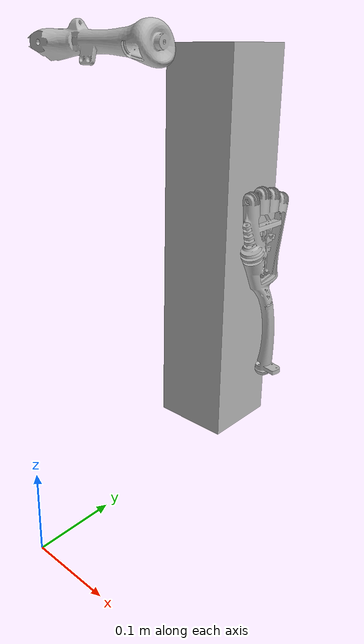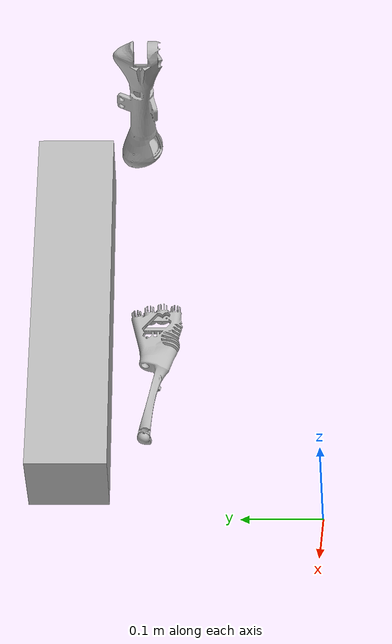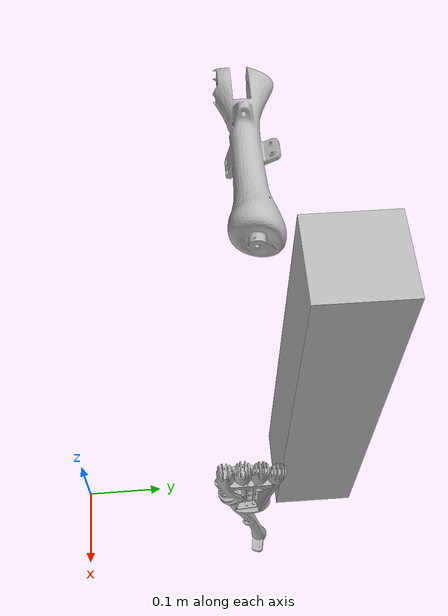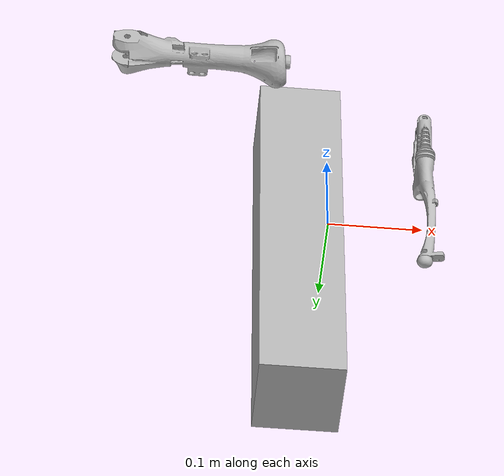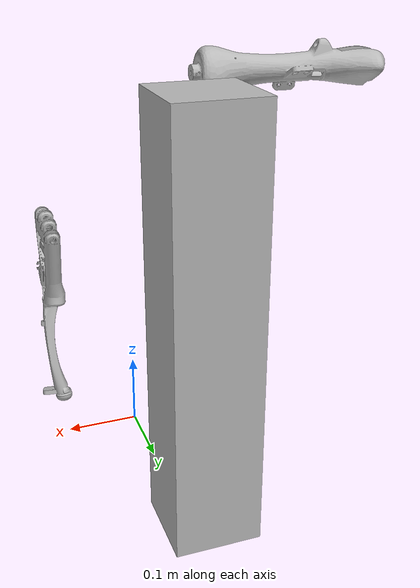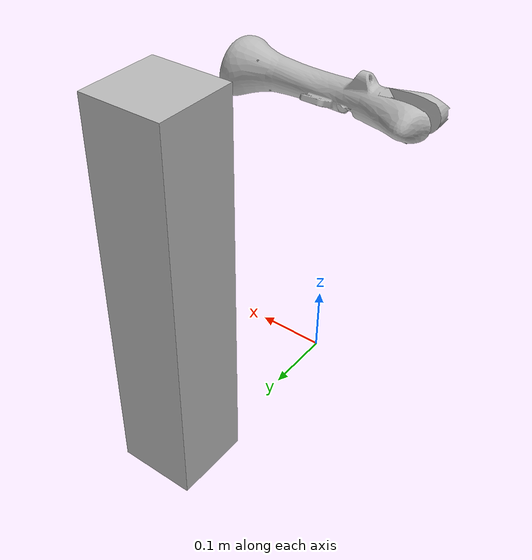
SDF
<?xml version='1.0'?>
<sdf version="1.5">
    <model name="arm">
        <pose>0 0 0 0 0 0</pose>
        <static>false</static>
        <link name='arm_holder'>
            <gravity>0</gravity>
            <pose>0 0.31 .3 0 0 0</pose>
            <inertial>
                <mass>2</mass>
                <pose frame=''>0 0 0 0 -0 0</pose>
                <inertia>
                    <ixx>1</ixx>
                    <ixy>0</ixy>
                    <ixz>0</ixz>
                    <iyy>1</iyy>
                    <iyz>0</iyz>
                    <izz>1</izz>
                </inertia>
            </inertial>
            <collision name='collision'>
                <geometry>
                    <box>
                        <size>.1 .1 .5</size>
                    </box>
                </geometry>
            </collision>
            <visual name='visual'>
                <geometry>
                    <box>
                        <size>.1 .1 .5</size>
                    </box>
                </geometry>
            </visual>
        </link>

        <link name='hand'>
            <gravity>true</gravity>
            <pose frame=''>0.14 0.197 0.335 0 0 -1.5707</pose>
            <inertial>
                <mass>5</mass>
                <pose frame=''>0 0 0 0 -0 0</pose>
                <inertia>
                    <ixx>1</ixx>
                    <ixy>0</ixy>
                    <ixz>0</ixz>
                    <iyy>1</iyy>
                    <iyz>0</iyz>
                    <izz>1</izz>
                </inertia>
            </inertial>
            <self_collide>0</self_collide>
            <kinematic>0</kinematic>
            <visual name='visual'>
                <geometry>
                    <mesh>
                        <scale>1 1 1</scale>
                        <uri>model://arm/dae/p-handflaeche-teil-2-v01.dae</uri>
                    </mesh>
                </geometry>
                <material>
                    <shader type='pixel'>
                        <normal_map>__default__</normal_map>
                    </shader>
                </material>
                <pose frame=''>0 0 0 0 -0 0</pose>
                <cast_shadows>1</cast_shadows>
                <transparency>0</transparency>
            </visual>
            <collision name='collision'>
                <laser_retro>0</laser_retro>
                <max_contacts>10</max_contacts>
                <pose frame=''>0 0 0 0 -0 0</pose>
                <geometry>
                    <mesh>
                        <uri>model://arm/dae/collision_p-handflaeche-teil-2-v01.dae</uri>
                    </mesh>
                </geometry>
            </collision>
        </link>

        <link name="upper_arm">
            <gravity>true</gravity>
            <pose frame=''>-0 0.22 .55 1.57 -0 1.5707</pose>
            <inertial>
                <mass>1</mass>
                <pose frame=''>0 0 0 0 -0 0</pose>
                <inertia>
                    <ixx>1</ixx>
                    <ixy>0</ixy>
                    <ixz>0</ixz>
                    <iyy>1</iyy>
                    <iyz>0</iyz>
                    <izz>1</izz>
                </inertia>
            </inertial>
            <self_collide>0</self_collide>
            <kinematic>0</kinematic>
            <visual name='visual'>
                <geometry>
                    <mesh>
                        <scale>1 1 1</scale>
                        <uri>model://arm/dae/p-oberarm-1-v02.dae</uri>
                    </mesh>
                </geometry>
                <material>
                    <shader type='pixel'>
                        <normal_map>__default__</normal_map>
                    </shader>
                </material>
                <pose frame=''>0 0 0 0 -0 0</pose>
                <cast_shadows>1</cast_shadows>
                <transparency>0</transparency>
            </visual>
            <collision name='collision'>
                <laser_retro>0</laser_retro>
                <max_contacts>10</max_contacts>
                <pose frame=''>0 0 0 0 -0 0</pose>
                <geometry>
                    <mesh>
                        <uri>model://arm/dae/collision_p-oberarm-1-v02.dae</uri>
                    </mesh>
                </geometry>
            </collision>
        </link>

        <joint name="motor0" type="revolute">
            <pose>0 -0.15 0 0 0 1.57</pose>
            <child>hand</child>
            <parent>upper_arm</parent>
            <axis>
                <limit>
                    <lower>-0.7</lower>
                    <upper>1.57</upper>
                </limit>
                <xyz>0 1 0</xyz>
            </axis>
        </joint>

        <joint name="motor1" type="revolute">
            <pose>0 -0.02 0.5 0 0 0</pose>
            <child>upper_arm</child>
            <parent>arm_holder</parent>
            <axis>
                <limit>
                    <lower>0</lower>
                    <upper>0</upper>
                </limit>
                <xyz>0 1 0</xyz>
            </axis>
        </joint>

        <joint name="armholder_ground" type="revolute">
            <parent>world</parent>
            <child>arm_holder</child>
            <axis>
                <limit>
                    <lower>0</lower>
                    <upper>0</upper>
                </limit>
                <xyz>0 1 0</xyz>
            </axis>
        </joint>

        <plugin name="roboySim" filename="libroboySim.so">
            <myoMuscle name="elbow">
                <link name="upper_arm">
                    <viaPoint>0.0 0.0 0.0</viaPoint>
                </link>
                <link name="hand">
                    <viaPoint>0.0 0.5 0.0</viaPoint>
                </link>
                <motor>
                    <bemf_constant>0.001488</bemf_constant> <!--V/rpm-->
                    <torque_constant>14.2</torque_constant> <!--mNm/A-->
                    <inductance>0.118</inductance> <!--mH-->
                    <resistance>0.797</resistance> <!--Ohm-->
                    <inertiaMoment>4.09</inertiaMoment> <!--gcm^2-->
                </motor>
                <gear>
                    <ratio>53</ratio>
                    <efficiency>0.59</efficiency>
                    <inertiaMoment>0.4</inertiaMoment> <!--gcm^2-->
                </gear>
                <spindle>
                    <radius>0.005</radius>
                </spindle>
                <SEE>
                    <stiffness>1.0</stiffness>
                    <length>0.1</length>
                </SEE>
            </myoMuscle>
        </plugin>
    </model>
</sdf>
